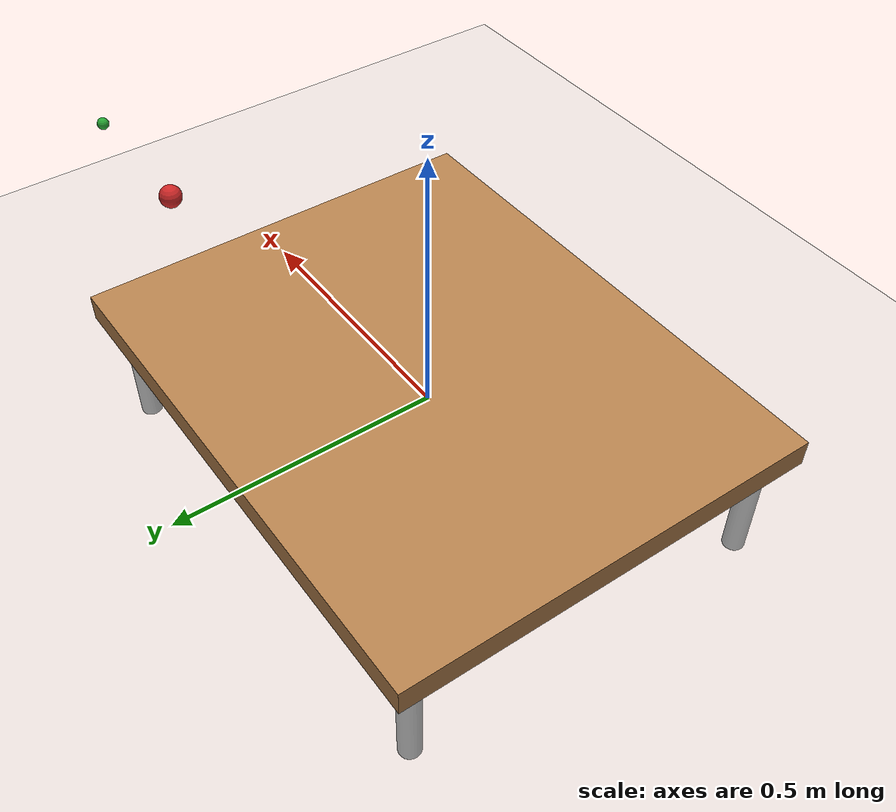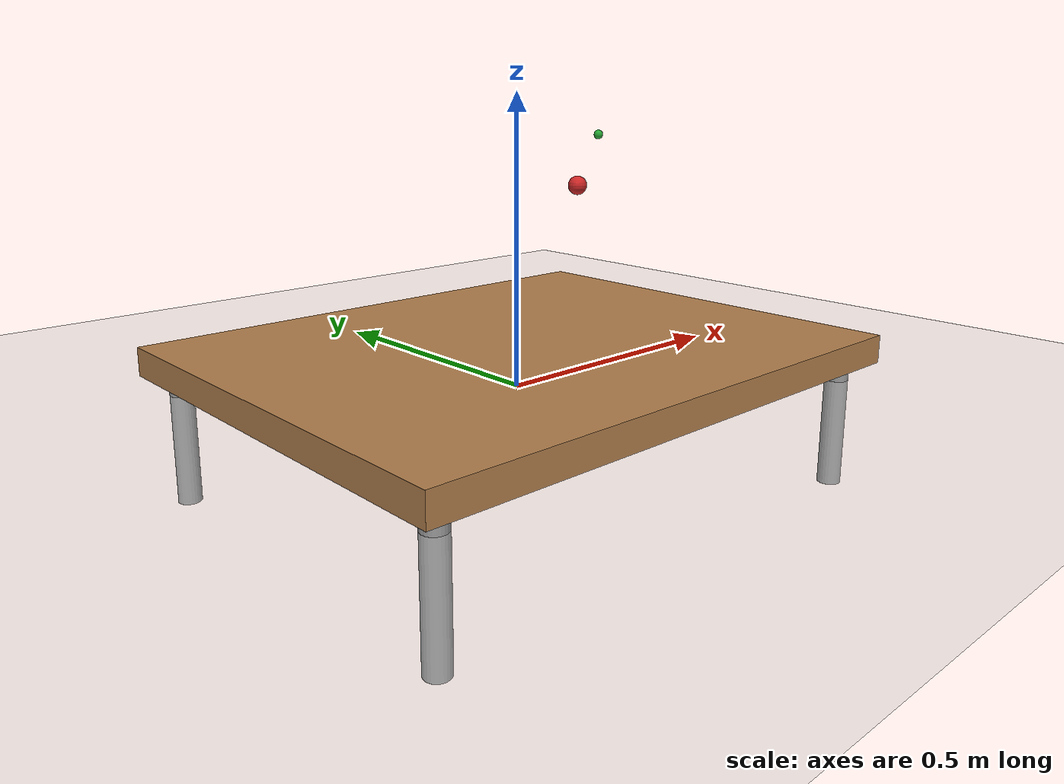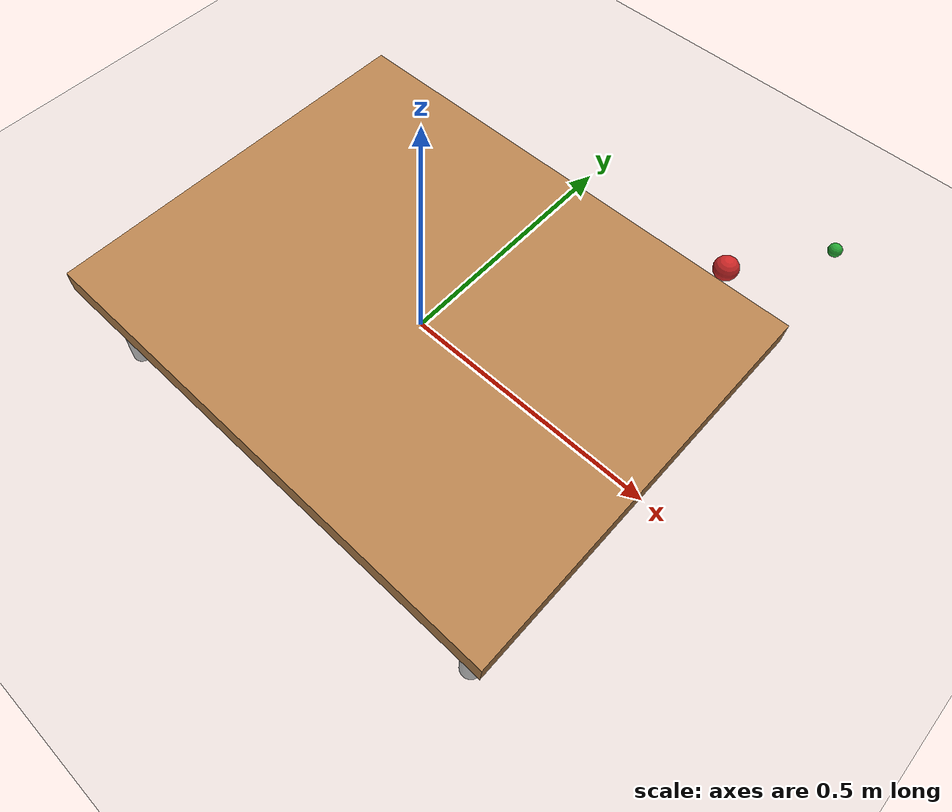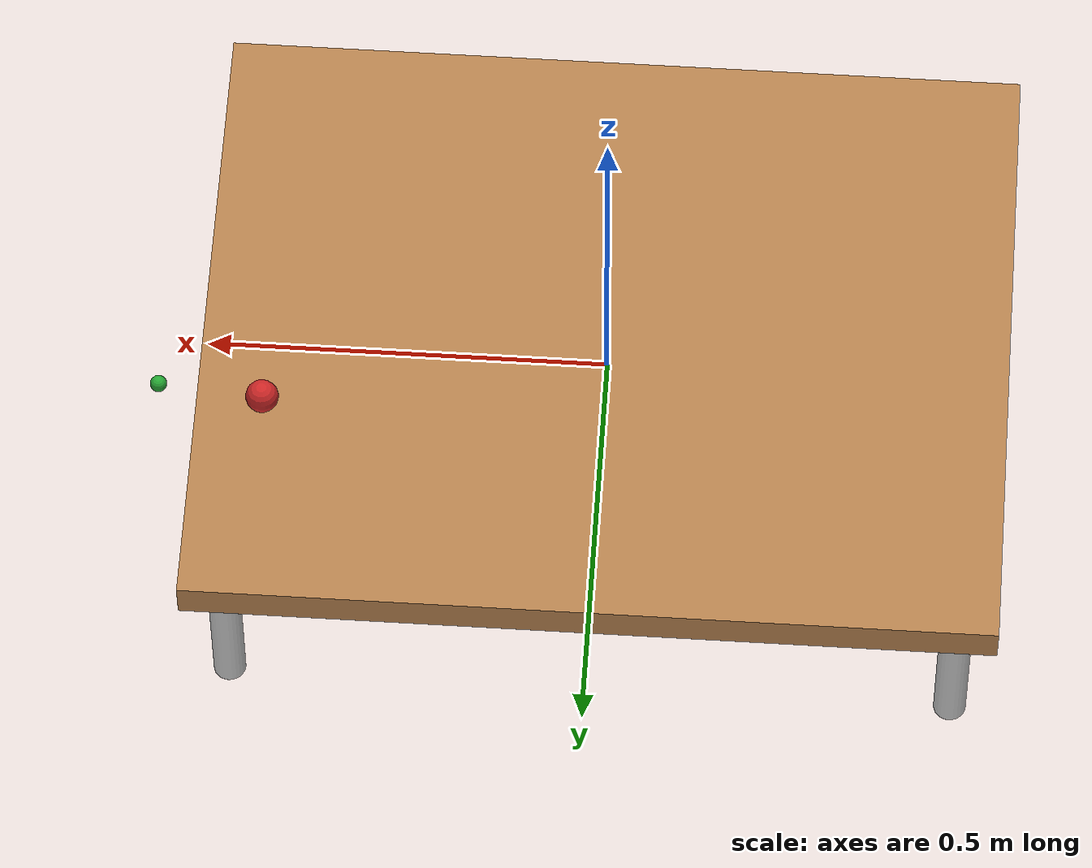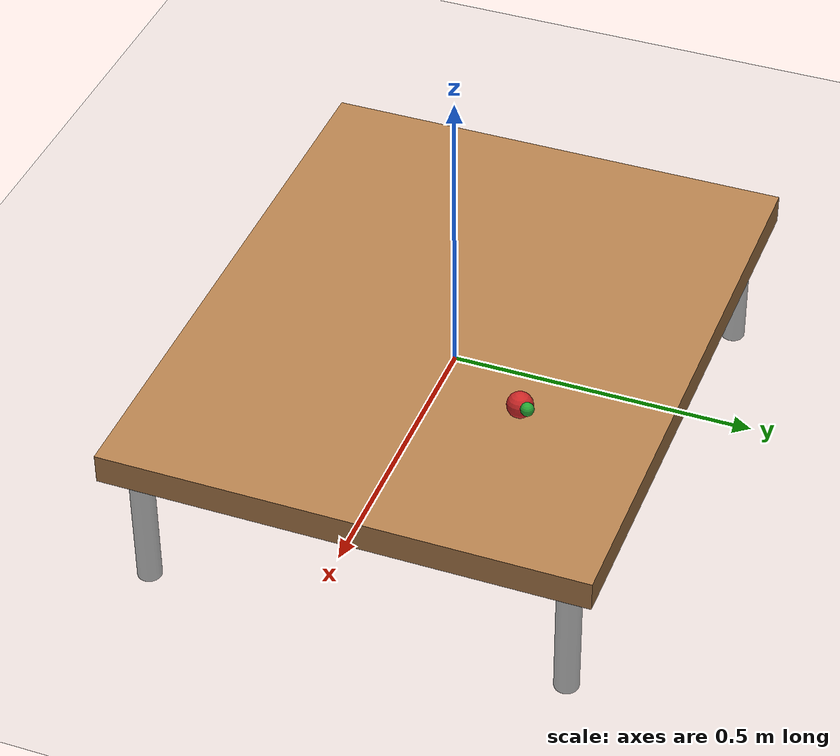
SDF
<?xml version="1.0" ?>
<sdf version="1.6">
  <world name="ur5e_table_world">

    <!-- Basic environment -->
    <include>
      <uri>model://sun</uri>
    </include>

    <include>
      <uri>model://ground_plane</uri>
    </include>

    <!-- Table -->
    <model name="table">
      <static>true</static>
      <pose>0 0 0.055 0 0 0</pose>
      <link name="link">
        <!-- Table top -->
        <collision name="table_top_collision">
          <pose>0 0 0 0 0 0</pose>
          <geometry>
            <box>
              <size>1.0 0.8 0.05</size>
            </box>
          </geometry>
        </collision>
        <visual name="table_top_visual">
          <pose>0 0 0 0 0 0</pose>
          <geometry>
            <box>
              <size>1.0 0.8 0.05</size>
            </box>
          </geometry>
          <material>
            <script>
              <uri>file://media/materials/scripts/gazebo.material</uri>
              <name>Gazebo/Wood</name>
            </script>
          </material>
        </visual>

        <!-- Table legs -->
        <collision name="leg1_collision">
          <pose>0.45 0.35 -0.125 0 0 0</pose>
          <geometry>
            <cylinder>
              <radius>0.02</radius>
              <length>0.25</length>
            </cylinder>
          </geometry>
        </collision>
        <visual name="leg1_visual">
          <pose>0.45 0.35 -0.125 0 0 0</pose>
          <geometry>
            <cylinder>
              <radius>0.02</radius>
              <length>0.25</length>
            </cylinder>
          </geometry>
          <material>
            <script>
              <uri>file://media/materials/scripts/gazebo.material</uri>
              <name>Gazebo/Grey</name>
            </script>
          </material>
        </visual>

        <collision name="leg2_collision">
          <pose>0.45 -0.35 -0.125 0 0 0</pose>
          <geometry>
            <cylinder>
              <radius>0.02</radius>
              <length>0.25</length>
            </cylinder>
          </geometry>
        </collision>
        <visual name="leg2_visual">
          <pose>0.45 -0.35 -0.125 0 0 0</pose>
          <geometry>
            <cylinder>
              <radius>0.02</radius>
              <length>0.25</length>
            </cylinder>
          </geometry>
          <material>
            <script>
              <uri>file://media/materials/scripts/gazebo.material</uri>
              <name>Gazebo/Grey</name>
            </script>
          </material>
        </visual>

        <collision name="leg3_collision">
          <pose>-0.45 0.35 -0.125 0 0 0</pose>
          <geometry>
            <cylinder>
              <radius>0.02</radius>
              <length>0.25</length>
            </cylinder>
          </geometry>
        </collision>
        <visual name="leg3_visual">
          <pose>-0.45 0.35 -0.125 0 0 0</pose>
          <geometry>
            <cylinder>
              <radius>0.02</radius>
              <length>0.25</length>
            </cylinder>
          </geometry>
          <material>
            <script>
              <uri>file://media/materials/scripts/gazebo.material</uri>
              <name>Gazebo/Grey</name>
            </script>
          </material>
        </visual>

        <collision name="leg4_collision">
          <pose>-0.45 -0.35 -0.125 0 0 0</pose>
          <geometry>
            <cylinder>
              <radius>0.02</radius>
              <length>0.25</length>
            </cylinder>
          </geometry>
        </collision>
        <visual name="leg4_visual">
          <pose>-0.45 -0.35 -0.125 0 0 0</pose>
          <geometry>
            <cylinder>
              <radius>0.02</radius>
              <length>0.25</length>
            </cylinder>
          </geometry>
          <material>
            <script>
              <uri>file://media/materials/scripts/gazebo.material</uri>
              <name>Gazebo/Grey</name>
            </script>
          </material>
        </visual>
      </link>
    </model>

    <!-- Obstacle (Red sphere) -->
    <model name="obstacle">
      <static>true</static>
      <pose>0.4 0.25 0.3 0 0 0</pose>
      <link name="link">
        <collision name="collision">
          <geometry>
            <sphere>
              <radius>0.02</radius>
            </sphere>
          </geometry>
        </collision>
        <visual name="visual">
          <geometry>
            <sphere>
              <radius>0.02</radius>
            </sphere>
          </geometry>
          <material>
            <script>
              <uri>file://media/materials/scripts/gazebo.material</uri>
              <name>Gazebo/Red</name>
            </script>
          </material>
        </visual>
      </link>
    </model>

    <!-- Target (Green sphere) -->
    <model name="target">
      <static>true</static>
      <pose>0.515 0.3 0.4 0 0 0</pose>
      <link name="link">
        <collision name="collision">
          <geometry>
            <sphere>
              <radius>0.01</radius>
            </sphere>
          </geometry>
        </collision>
        <visual name="visual">
          <geometry>
            <sphere>
              <radius>0.01</radius>
            </sphere>
          </geometry>
          <material>
            <script>
              <uri>file://media/materials/scripts/gazebo.material</uri>
              <name>Gazebo/Green</name>
            </script>
          </material>
        </visual>
      </link>
    </model>

    <!-- Physics settings -->
    <physics type="ode">
      <real_time_update_rate>1000</real_time_update_rate>
      <max_step_size>0.001</max_step_size>
    </physics>

    <!-- Lighting settings -->
    <light name="spot_light" type="spot">
      <pose>0 0 2 0 0 0</pose>
      <diffuse>0.5 0.5 0.5 1</diffuse>
      <specular>0.1 0.1 0.1 1</specular>
      <direction>0 0 -1</direction>
      <attenuation>
        <range>20</range>
        <constant>0.5</constant>
        <linear>0.01</linear>
        <quadratic>0.001</quadratic>
      </attenuation>
      <cast_shadows>true</cast_shadows>
      <spot>
        <inner_angle>0.6</inner_angle>
        <outer_angle>1</outer_angle>
        <falloff>1</falloff>
      </spot>
    </light>

  </world>
</sdf>
